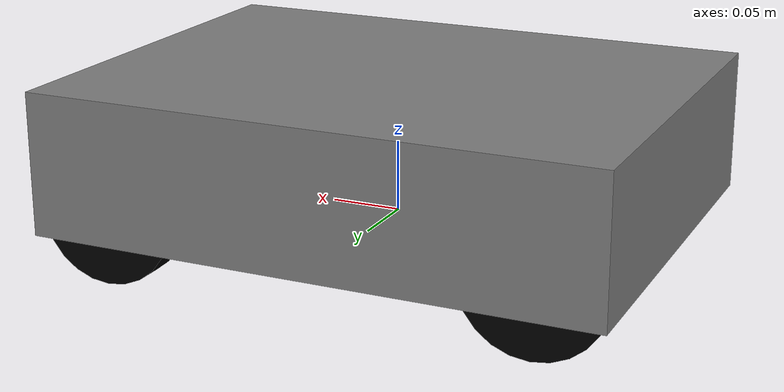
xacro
<?xml version="1.0"?>
<robot name="four_wheel_bot" xmlns:xacro="http://ros.org/wiki/xacro">

  <!-- Materials -->
  <material name="gray">
    <color rgba="0.5 0.5 0.5 1.0"/>
  </material>
  <material name="black">
    <color rgba="0.0 0.0 0.0 1.0"/>
  </material>

  <!-- Base -->
  <link name="base_link">
    <visual>
      <origin xyz="0 0 0.05" rpy="0 0 0"/>
      <geometry>
        <box size="0.4 0.3 0.1"/>
      </geometry>
      <material name="gray"/>
    </visual>
    <collision>
      <origin xyz="0 0 0.05" rpy="0 0 0"/>
      <geometry>
        <box size="0.4 0.3 0.1"/>
      </geometry>
    </collision>
    <inertial>
      <origin xyz="0 0 0.05" rpy="0 0 0"/>
      <mass value="5.0"/>
      <inertia ixx="0.1" ixy="0" ixz="0" iyy="0.1" iyz="0" izz="0.1"/>
    </inertial>
  </link>

  <!-- Wheel Macro -->
  <xacro:macro name="wheel" params="name x y">
    <link name="${name}">
      <visual>
        <origin xyz="0 0 0" rpy="1.5708 0 0"/>
        <geometry>
          <cylinder radius="0.05" length="0.02"/>
        </geometry>
        <material name="black"/>
      </visual>
      <collision>
        <origin xyz="0 0 0" rpy="1.5708 0 0"/>
        <geometry>
          <cylinder radius="0.05" length="0.02"/>
        </geometry>
      </collision>
      <inertial>
        <origin xyz="0 0 0" rpy="0 0 0"/>
        <mass value="0.5"/>
        <inertia ixx="0.001" ixy="0" ixz="0" iyy="0.001" iyz="0" izz="0.001"/>
      </inertial>
    </link>

    <joint name="${name}_joint" type="continuous">
      <parent link="base_link"/>
      <child link="${name}"/>
      <origin xyz="${x} ${y} 0.02" rpy="0 0 0"/>
      <axis xyz="0 1 0"/>
    </joint>
  </xacro:macro>

  <!-- Wheels -->
  <xacro:wheel name="front_left_wheel"  x="0.15"  y="0.13"/>
  <xacro:wheel name="front_right_wheel" x="0.15"  y="-0.13"/>
  <xacro:wheel name="rear_left_wheel"   x="-0.15" y="0.13"/>
  <xacro:wheel name="rear_right_wheel"  x="-0.15" y="-0.13"/>

</robot>
